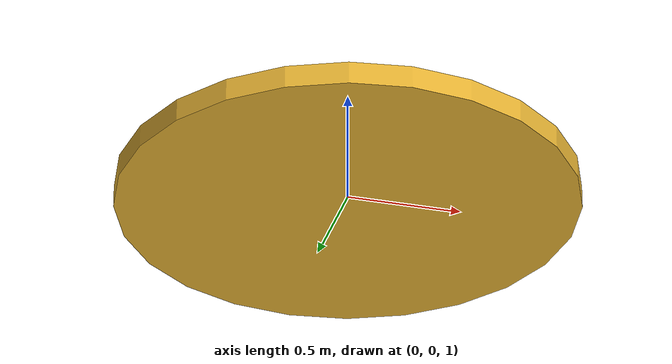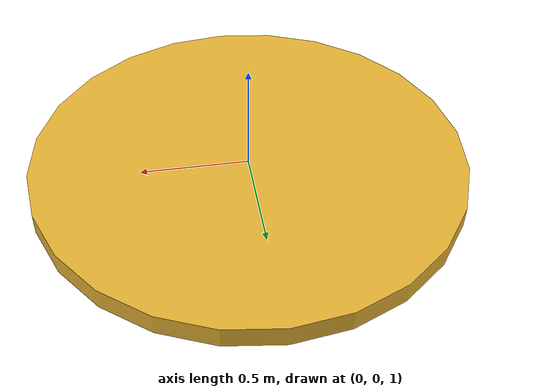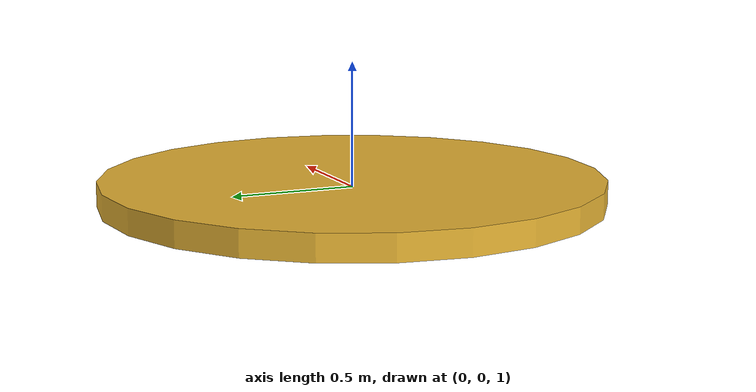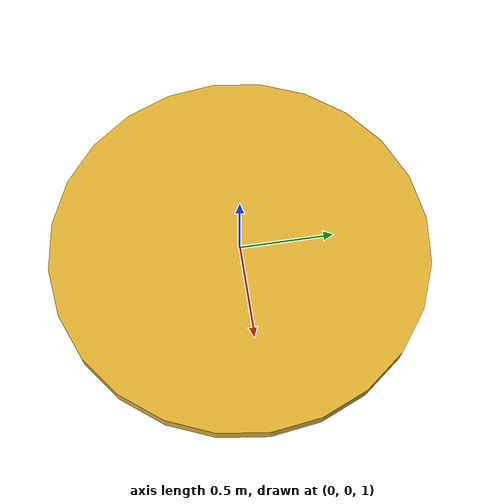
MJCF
<mujoco>
  <option gravity="0 0 -9.81" />
  <worldbody>

    <body name="object_1" pos="0 0 1">
      <geom type="cylinder" size="1 0.05" density="1" rgba="0.9 0.7 0.2 1" />
      <joint name="object_1_joint" type="free" />
    </body>

    <body name="object_3" pos="-10 0 -10">
      <geom type="plane" size="25 25 0.1" rgba="0.7 0.7 0.7 1" friction="1 1 1" />
    </body>
  </worldbody>
</mujoco>
